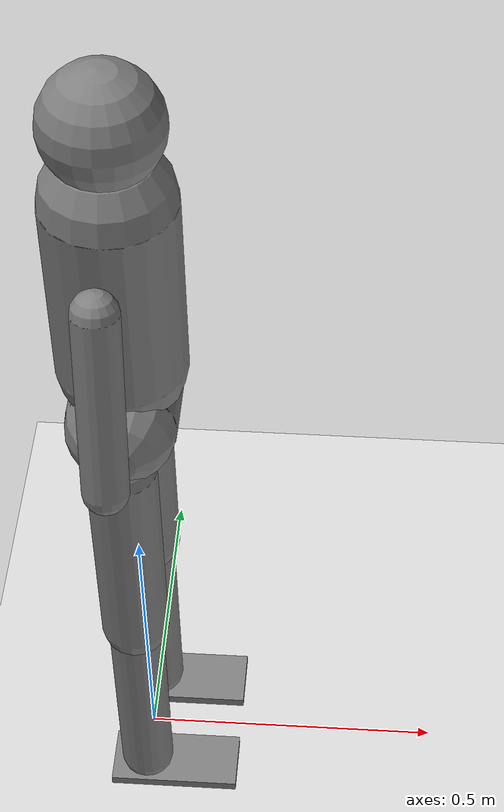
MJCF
<mujoco model="humanoid16">
  <compiler angle="radian" inertiafromgeom="true"/>
  <option timestep="0.004166" iterations="6" solver="Newton" integrator="implicitfast"/>
  <!-- Cap per-env mjData arena: default sizing × 4096 envs would exhaust RAM. -->
  <size memory="512K"/>

  <default>
    <joint armature="0.01" damping="1.5" limited="true"/>
    <geom condim="3" friction="1.0 0.05 0.05" density="1000" margin="0.001"/>
    <motor ctrllimited="true" ctrlrange="-1 1"/>
  </default>

  <worldbody>
    <geom name="floor" type="plane" size="200 200 0.1" rgba="0.85 0.85 0.85 1"/>

    <body name="torso" pos="0 0 1.05">
      <freejoint name="root"/>
      <geom name="torso_geom" type="capsule" fromto="0 0 -0.12 0 0 0.19" size="0.10"/>
      <geom name="head" type="sphere" pos="0 0 0.32" size="0.09"/>

      <!-- Arms: single-DoF pitch, pure balance aids -->
      <body name="upper_arm_r" pos="0 -0.17 0.14">
        <joint name="shoulder_r" type="hinge" axis="0 1 0" range="-1.5 1.5"/>
        <geom type="capsule" fromto="0 0 0 0 -0.05 -0.30" size="0.035"/>
      </body>
      <body name="upper_arm_l" pos="0 0.17 0.14">
        <joint name="shoulder_l" type="hinge" axis="0 1 0" range="-1.5 1.5"/>
        <geom type="capsule" fromto="0 0 0 0 0.05 -0.30" size="0.035"/>
      </body>

      <body name="pelvis" pos="0 0 -0.20">
        <joint name="abdomen_y" type="hinge" axis="0 1 0" range="-0.7 0.9"/>
        <joint name="abdomen_x" type="hinge" axis="1 0 0" range="-0.5 0.5"/>
        <geom name="pelvis_geom" type="capsule" fromto="0 -0.06 0 0 0.06 0" size="0.085"/>

        <!-- Right leg -->
        <body name="thigh_r" pos="0 -0.09 -0.06">
          <joint name="hip_x_r" type="hinge" axis="1 0 0" range="-0.45 0.45"/>
          <joint name="hip_y_r" type="hinge" axis="0 1 0" range="-1.8 0.6"/>
          <joint name="hip_z_r" type="hinge" axis="0 0 1" range="-0.6 0.6"/>
          <geom type="capsule" fromto="0 0 0 0 0 -0.38" size="0.055"/>
          <body name="shin_r" pos="0 0 -0.38">
            <joint name="knee_r" type="hinge" axis="0 1 0" range="0.02 2.4"/>
            <geom type="capsule" fromto="0 0 0 0 0 -0.38" size="0.045"/>
            <body name="foot_r" pos="0 0 -0.40">
              <joint name="ankle_y_r" type="hinge" axis="0 1 0" range="-0.9 0.9"/>
              <joint name="ankle_x_r" type="hinge" axis="1 0 0" range="-0.4 0.4"/>
              <geom name="foot_r_geom" type="box" pos="0.05 0 -0.02" size="0.11 0.05 0.025"/>
            </body>
          </body>
        </body>

        <!-- Left leg -->
        <body name="thigh_l" pos="0 0.09 -0.06">
          <joint name="hip_x_l" type="hinge" axis="1 0 0" range="-0.45 0.45"/>
          <joint name="hip_y_l" type="hinge" axis="0 1 0" range="-1.8 0.6"/>
          <joint name="hip_z_l" type="hinge" axis="0 0 1" range="-0.6 0.6"/>
          <geom type="capsule" fromto="0 0 0 0 0 -0.38" size="0.055"/>
          <body name="shin_l" pos="0 0 -0.38">
            <joint name="knee_l" type="hinge" axis="0 1 0" range="0.02 2.4"/>
            <geom type="capsule" fromto="0 0 0 0 0 -0.38" size="0.045"/>
            <body name="foot_l" pos="0 0 -0.40">
              <joint name="ankle_y_l" type="hinge" axis="0 1 0" range="-0.9 0.9"/>
              <joint name="ankle_x_l" type="hinge" axis="1 0 0" range="-0.4 0.4"/>
              <geom name="foot_l_geom" type="box" pos="0.05 0 -0.02" size="0.11 0.05 0.025"/>
            </body>
          </body>
        </body>
      </body>
    </body>
  </worldbody>

  <!-- Actuator order defines the action vector layout (ActionDim = 16). -->
  <actuator>
    <motor name="a_abdomen_y"  joint="abdomen_y"  gear="100"/>
    <motor name="a_abdomen_x"  joint="abdomen_x"  gear="100"/>
    <motor name="a_hip_x_r"    joint="hip_x_r"    gear="120"/>
    <motor name="a_hip_y_r"    joint="hip_y_r"    gear="160"/>
    <motor name="a_hip_z_r"    joint="hip_z_r"    gear="60"/>
    <motor name="a_knee_r"     joint="knee_r"     gear="120"/>
    <motor name="a_ankle_y_r"  joint="ankle_y_r"  gear="60"/>
    <motor name="a_ankle_x_r"  joint="ankle_x_r"  gear="40"/>
    <motor name="a_hip_x_l"    joint="hip_x_l"    gear="120"/>
    <motor name="a_hip_y_l"    joint="hip_y_l"    gear="160"/>
    <motor name="a_hip_z_l"    joint="hip_z_l"    gear="60"/>
    <motor name="a_knee_l"     joint="knee_l"     gear="120"/>
    <motor name="a_ankle_y_l"  joint="ankle_y_l"  gear="60"/>
    <motor name="a_ankle_x_l"  joint="ankle_x_l"  gear="40"/>
    <motor name="a_shoulder_r" joint="shoulder_r" gear="40"/>
    <motor name="a_shoulder_l" joint="shoulder_l" gear="40"/>
  </actuator>
</mujoco>
